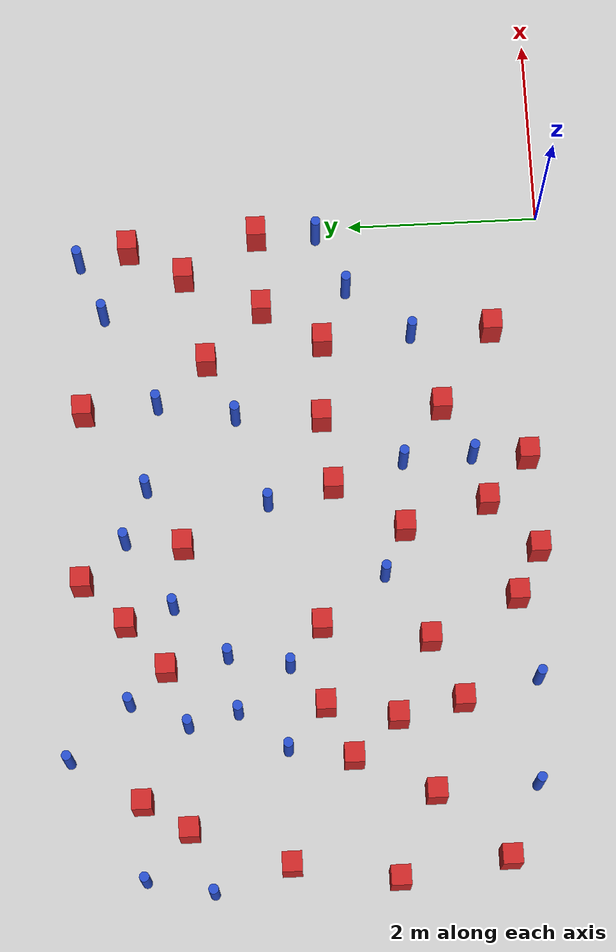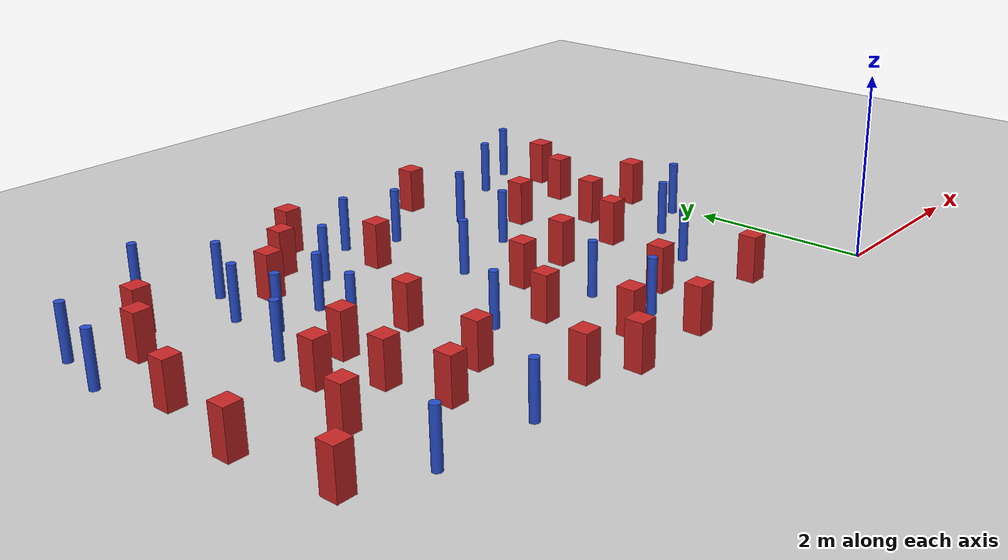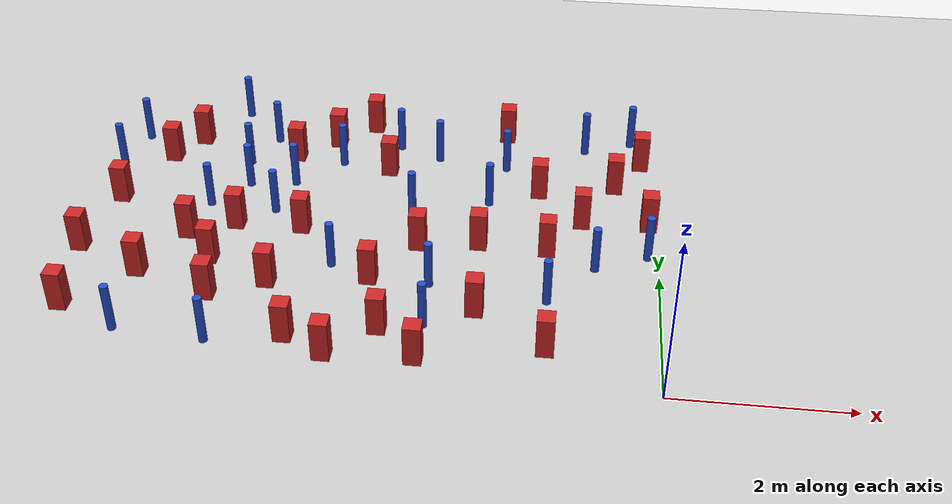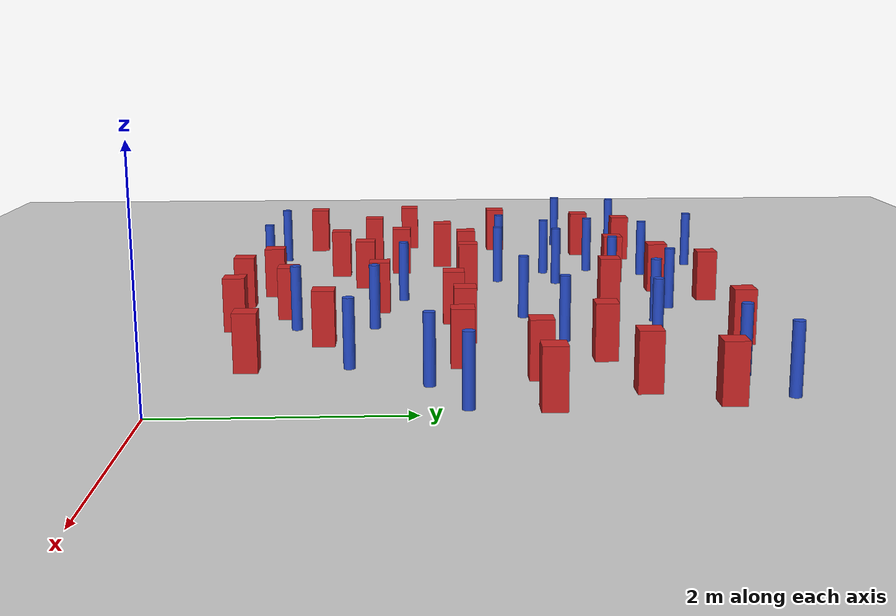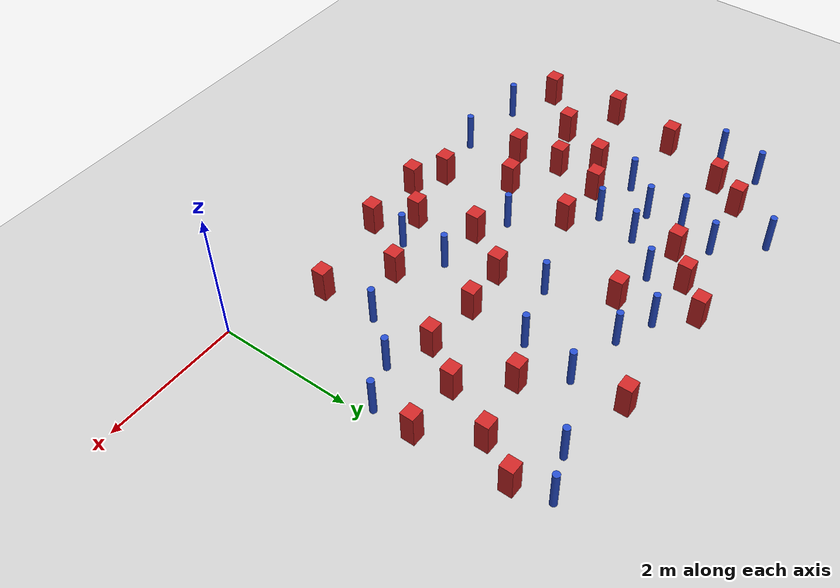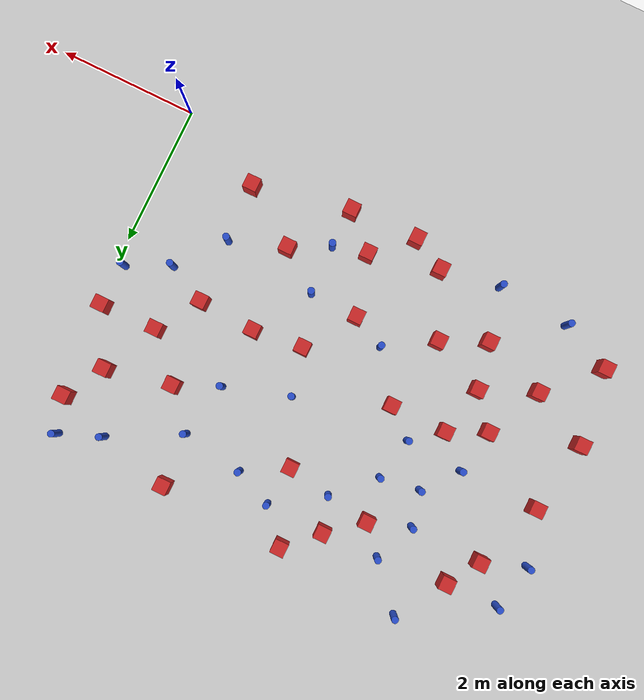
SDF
<sdf version="1.6">
 <world name="default">
  <model name="ground_plane">
   <static>1</static>
   <link name="link">
    <collision name="collision">
     <geometry><plane><normal>0 0 1</normal><size>100 100</size></plane></geometry>
     <surface><friction><ode><mu>100</mu><mu2>50</mu2></ode></friction></surface>
    </collision>
    <visual name="visual">
     <cast_shadows>0</cast_shadows>
     <geometry><plane><normal>0 0 1</normal><size>100 100</size></plane></geometry>
     <material>
      <ambient>1.0 1.0 1.0 1.0</ambient>
      <diffuse>0.8 0.8 0.8 1.0</diffuse>
      <specular>0.01 0.01 0.01 1.000000</specular>
     </material>
    </visual>
   </link>
  </model>
  <model name="square_post_obstacle1">
   <static>true</static>
   <pose>-2.65775517127 0.298628384528 1.91545236811e-07 -7.35059704564e-06 1.12565212e-07 2.39332434364e-05</pose>
   <link name="link">
    <pose>0 0 0.25 0 -0 0</pose>
    <inertial>
     <mass>100</mass>
     <inertia>
      <ixx>0.166667</ixx>
      <ixy>0</ixy>
      <ixz>0</ixz>
      <iyy>0.166667</iyy>
      <iyz>0</iyz>
      <izz>0.166667</izz>
     </inertia>
    </inertial>
    <collision name="collision"><geometry><box><size>.2 .2 .5</size></box></geometry></collision>
    <visual name="visual">
     <geometry><box><size>.2 .2 .5</size></box></geometry>
     <material>
      <script><name>Gazebo/Red</name><uri>file://media/materials/scripts/gazebo.material</uri></script>
     </material>
    </visual>
   </link>
  </model>
  <model name="square_post_obstacle15">
   <static>true</static>
   <pose>-0.932526725977 2.9677390461 1.91545236811e-07 -7.35059704564e-06 1.12565212e-07 2.39332434364e-05</pose>
   <link name="link">
    <pose>0 0 0.25 0 -0 0</pose>
    <inertial>
     <mass>100</mass>
     <inertia>
      <ixx>0.166667</ixx>
      <ixy>0</ixy>
      <ixz>0</ixz>
      <iyy>0.166667</iyy>
      <iyz>0</iyz>
      <izz>0.166667</izz>
     </inertia>
    </inertial>
    <collision name="collision"><geometry><box><size>.2 .2 .5</size></box></geometry></collision>
    <visual name="visual">
     <geometry><box><size>.2 .2 .5</size></box></geometry>
     <material>
      <script><name>Gazebo/Red</name><uri>file://media/materials/scripts/gazebo.material</uri></script>
     </material>
    </visual>
   </link>
  </model>
  <model name="square_post_obstacle19">
   <static>true</static>
   <pose>-6.7253337797 2.91687751709 1.91545236811e-07 -7.35059704564e-06 1.12565212e-07 2.39332434364e-05</pose>
   <link name="link">
    <pose>0 0 0.25 0 -0 0</pose>
    <inertial>
     <mass>100</mass>
     <inertia>
      <ixx>0.166667</ixx>
      <ixy>0</ixy>
      <ixz>0</ixz>
      <iyy>0.166667</iyy>
      <iyz>0</iyz>
      <izz>0.166667</izz>
     </inertia>
    </inertial>
    <collision name="collision"><geometry><box><size>.2 .2 .5</size></box></geometry></collision>
    <visual name="visual">
     <geometry><box><size>.2 .2 .5</size></box></geometry>
     <material>
      <script><name>Gazebo/Red</name><uri>file://media/materials/scripts/gazebo.material</uri></script>
     </material>
    </visual>
   </link>
  </model>
  <model name="pole_obstacle11">
   <static>true</static>
   <pose>-1.28398703065 1.41821444295 7.38925637345e-09 -8.471706928e-08 1.24976765079e-08 -1.74513093017e-07</pose>
   <link name="link">
    <pose>0 0 0.3 0 -0 0</pose>
    <inertial>
     <mass>1</mass>
     <inertia><ixx>0.145833</ixx><ixy>0</ixy><ixz>0</ixz><iyy>0.145833</iyy><iyz>0</iyz><izz>0.125</izz></inertia>
    </inertial>
    <collision name="collision">
     <geometry><cylinder><radius>0.05</radius><length>.6</length></cylinder></geometry>
    </collision>
    <visual name="visual">
     <geometry><cylinder><radius>0.05</radius><length>.6</length></cylinder></geometry>
     <material>
      <script><name>Gazebo/Blue</name><uri>file://media/materials/scripts/gazebo.material</uri></script>
     </material>
    </visual>
   </link>
  </model>
  <model name="square_post_obstacle21">
   <static>true</static>
   <pose>-2.15206947412 2.39921926246 1.91545236811e-07 -7.35059704564e-06 1.12565212e-07 2.39332434364e-05</pose>
   <link name="link">
    <pose>0 0 0.25 0 -0 0</pose>
    <inertial>
     <mass>100</mass>
     <inertia>
      <ixx>0.166667</ixx>
      <ixy>0</ixy>
      <ixz>0</ixz>
      <iyy>0.166667</iyy>
      <iyz>0</iyz>
      <izz>0.166667</izz>
     </inertia>
    </inertial>
    <collision name="collision"><geometry><box><size>.2 .2 .5</size></box></geometry></collision>
    <visual name="visual">
     <geometry><box><size>.2 .2 .5</size></box></geometry>
     <material>
      <script><name>Gazebo/Red</name><uri>file://media/materials/scripts/gazebo.material</uri></script>
     </material>
    </visual>
   </link>
  </model>
  <model name="square_post_obstacle26">
   <static>true</static>
   <pose>-5.68889429534 2.25094203357 1.91545236811e-07 -7.35059704564e-06 1.12565212e-07 2.39332434364e-05</pose>
   <link name="link">
    <pose>0 0 0.25 0 -0 0</pose>
    <inertial>
     <mass>100</mass>
     <inertia>
      <ixx>0.166667</ixx>
      <ixy>0</ixy>
      <ixz>0</ixz>
      <iyy>0.166667</iyy>
      <iyz>0</iyz>
      <izz>0.166667</izz>
     </inertia>
    </inertial>
    <collision name="collision"><geometry><box><size>.2 .2 .5</size></box></geometry></collision>
    <visual name="visual">
     <geometry><box><size>.2 .2 .5</size></box></geometry>
     <material>
      <script><name>Gazebo/Red</name><uri>file://media/materials/scripts/gazebo.material</uri></script>
     </material>
    </visual>
   </link>
  </model>
  <model name="square_post_obstacle27">
   <static>true</static>
   <pose>-4.52512040629 1.41693718209 1.91545236811e-07 -7.35059704564e-06 1.12565212e-07 2.39332434364e-05</pose>
   <link name="link">
    <pose>0 0 0.25 0 -0 0</pose>
    <inertial>
     <mass>100</mass>
     <inertia>
      <ixx>0.166667</ixx>
      <ixy>0</ixy>
      <ixz>0</ixz>
      <iyy>0.166667</iyy>
      <iyz>0</iyz>
      <izz>0.166667</izz>
     </inertia>
    </inertial>
    <collision name="collision"><geometry><box><size>.2 .2 .5</size></box></geometry></collision>
    <visual name="visual">
     <geometry><box><size>.2 .2 .5</size></box></geometry>
     <material>
      <script><name>Gazebo/Red</name><uri>file://media/materials/scripts/gazebo.material</uri></script>
     </material>
    </visual>
   </link>
  </model>
  <model name="pole_obstacle19">
   <static>true</static>
   <pose>-5.579536095 2.89933511784 7.38925637345e-09 -8.47170692798e-08 1.24976764937e-08 -1.74513093023e-07</pose>
   <link name="link">
    <pose>0 0 0.3 0 -0 0</pose>
    <inertial>
     <mass>1</mass>
     <inertia><ixx>0.145833</ixx><ixy>0</ixy><ixz>0</ixz><iyy>0.145833</iyy><iyz>0</iyz><izz>0.125</izz></inertia>
    </inertial>
    <collision name="collision">
     <geometry><cylinder><radius>0.05</radius><length>.6</length></cylinder></geometry>
    </collision>
    <visual name="visual">
     <geometry><cylinder><radius>0.05</radius><length>.6</length></cylinder></geometry>
     <material>
      <script><name>Gazebo/Blue</name><uri>file://media/materials/scripts/gazebo.material</uri></script>
     </material>
    </visual>
   </link>
  </model>
  <model name="pole_obstacle20">
   <static>true</static>
   <pose>-2.62995323017 0.861603327612 7.38925637345e-09 -8.471706928e-08 1.24976765177e-08 -1.74513093012e-07</pose>
   <link name="link">
    <pose>0 0 0.3 0 -0 0</pose>
    <inertial>
     <mass>1</mass>
     <inertia><ixx>0.145833</ixx><ixy>0</ixy><ixz>0</ixz><iyy>0.145833</iyy><iyz>0</iyz><izz>0.125</izz></inertia>
    </inertial>
    <collision name="collision">
     <geometry><cylinder><radius>0.05</radius><length>.6</length></cylinder></geometry>
    </collision>
    <visual name="visual">
     <geometry><cylinder><radius>0.05</radius><length>.6</length></cylinder></geometry>
     <material>
      <script><name>Gazebo/Blue</name><uri>file://media/materials/scripts/gazebo.material</uri></script>
     </material>
    </visual>
   </link>
  </model>
  <model name="pole_obstacle26">
   <static>true</static>
   <pose>-4.61319312309 3.46450681237 7.38925637345e-09 -8.47170692798e-08 1.24976764937e-08 -1.74513093023e-07</pose>
   <link name="link">
    <pose>0 0 0.3 0 -0 0</pose>
    <inertial>
     <mass>1</mass>
     <inertia><ixx>0.145833</ixx><ixy>0</ixy><ixz>0</ixz><iyy>0.145833</iyy><iyz>0</iyz><izz>0.125</izz></inertia>
    </inertial>
    <collision name="collision">
     <geometry><cylinder><radius>0.05</radius><length>.6</length></cylinder></geometry>
    </collision>
    <visual name="visual">
     <geometry><cylinder><radius>0.05</radius><length>.6</length></cylinder></geometry>
     <material>
      <script><name>Gazebo/Blue</name><uri>file://media/materials/scripts/gazebo.material</uri></script>
     </material>
    </visual>
   </link>
  </model>
  <model name="pole_obstacle27">
   <static>true</static>
   <pose>-4.97878877309 0.352060895739 7.38925637345e-09 -8.47170692798e-08 1.24976765003e-08 -1.7451309302e-07</pose>
   <link name="link">
    <pose>0 0 0.3 0 -0 0</pose>
    <inertial>
     <mass>1</mass>
     <inertia><ixx>0.145833</ixx><ixy>0</ixy><ixz>0</ixz><iyy>0.145833</iyy><iyz>0</iyz><izz>0.125</izz></inertia>
    </inertial>
    <collision name="collision">
     <geometry><cylinder><radius>0.05</radius><length>.6</length></cylinder></geometry>
    </collision>
    <visual name="visual">
     <geometry><cylinder><radius>0.05</radius><length>.6</length></cylinder></geometry>
     <material>
      <script><name>Gazebo/Blue</name><uri>file://media/materials/scripts/gazebo.material</uri></script>
     </material>
    </visual>
   </link>
  </model>
  <model name="square_post_obstacle39">
   <static>true</static>
   <pose>-0.206156304745 4.34060191611 1.91545236811e-07 -7.35059704564e-06 1.12565212e-07 2.39332434364e-05</pose>
   <link name="link">
    <pose>0 0 0.25 0 -0 0</pose>
    <inertial>
     <mass>100</mass>
     <inertia>
      <ixx>0.166667</ixx>
      <ixy>0</ixy>
      <ixz>0</ixz>
      <iyy>0.166667</iyy>
      <iyz>0</iyz>
      <izz>0.166667</izz>
     </inertia>
    </inertial>
    <collision name="collision"><geometry><box><size>.2 .2 .5</size></box></geometry></collision>
    <visual name="visual">
     <geometry><box><size>.2 .2 .5</size></box></geometry>
     <material>
      <script><name>Gazebo/Red</name><uri>file://media/materials/scripts/gazebo.material</uri></script>
     </material>
    </visual>
   </link>
  </model>
  <model name="square_post_obstacle43">
   <static>true</static>
   <pose>-1.32859761685 2.35233563959 1.91545236811e-07 -7.35059704564e-06 1.12565212e-07 2.39332434364e-05</pose>
   <link name="link">
    <pose>0 0 0.25 0 -0 0</pose>
    <inertial>
     <mass>100</mass>
     <inertia>
      <ixx>0.166667</ixx>
      <ixy>0</ixy>
      <ixz>0</ixz>
      <iyy>0.166667</iyy>
      <iyz>0</iyz>
      <izz>0.166667</izz>
     </inertia>
    </inertial>
    <collision name="collision"><geometry><box><size>.2 .2 .5</size></box></geometry></collision>
    <visual name="visual">
     <geometry><box><size>.2 .2 .5</size></box></geometry>
     <material>
      <script><name>Gazebo/Red</name><uri>file://media/materials/scripts/gazebo.material</uri></script>
     </material>
    </visual>
   </link>
  </model>
  <model name="square_post_obstacle45">
   <static>true</static>
   <pose>-4.33298371476 2.50244606348 1.91545236811e-07 -7.35059704564e-06 1.12565212e-07 2.39332434364e-05</pose>
   <link name="link">
    <pose>0 0 0.25 0 -0 0</pose>
    <inertial>
     <mass>100</mass>
     <inertia>
      <ixx>0.166667</ixx>
      <ixy>0</ixy>
      <ixz>0</ixz>
      <iyy>0.166667</iyy>
      <iyz>0</iyz>
      <izz>0.166667</izz>
     </inertia>
    </inertial>
    <collision name="collision"><geometry><box><size>.2 .2 .5</size></box></geometry></collision>
    <visual name="visual">
     <geometry><box><size>.2 .2 .5</size></box></geometry>
     <material>
      <script><name>Gazebo/Red</name><uri>file://media/materials/scripts/gazebo.material</uri></script>
     </material>
    </visual>
   </link>
  </model>
  <model name="square_post_obstacle48">
   <static>true</static>
   <pose>-3.44908081431 3.87513550211 1.91545236811e-07 -7.35059704564e-06 1.12565212e-07 2.39332434364e-05</pose>
   <link name="link">
    <pose>0 0 0.25 0 -0 0</pose>
    <inertial>
     <mass>100</mass>
     <inertia>
      <ixx>0.166667</ixx>
      <ixy>0</ixy>
      <ixz>0</ixz>
      <iyy>0.166667</iyy>
      <iyz>0</iyz>
      <izz>0.166667</izz>
     </inertia>
    </inertial>
    <collision name="collision"><geometry><box><size>.2 .2 .5</size></box></geometry></collision>
    <visual name="visual">
     <geometry><box><size>.2 .2 .5</size></box></geometry>
     <material>
      <script><name>Gazebo/Red</name><uri>file://media/materials/scripts/gazebo.material</uri></script>
     </material>
    </visual>
   </link>
  </model>
  <model name="pole_obstacle48">
   <static>true</static>
   <pose>-4.08024752037 3.99524183026 7.38925637345e-09 -8.47170692798e-08 1.2497676496e-08 -1.74513093023e-07</pose>
   <link name="link">
    <pose>0 0 0.3 0 -0 0</pose>
    <inertial>
     <mass>1</mass>
     <inertia><ixx>0.145833</ixx><ixy>0</ixy><ixz>0</ixz><iyy>0.145833</iyy><iyz>0</iyz><izz>0.125</izz></inertia>
    </inertial>
    <collision name="collision">
     <geometry><cylinder><radius>0.05</radius><length>.6</length></cylinder></geometry>
    </collision>
    <visual name="visual">
     <geometry><cylinder><radius>0.05</radius><length>.6</length></cylinder></geometry>
     <material>
      <script><name>Gazebo/Blue</name><uri>file://media/materials/scripts/gazebo.material</uri></script>
     </material>
    </visual>
   </link>
  </model>
  <model name="square_post_obstacle72">
   <static>true</static>
   <pose>-6.34181282021 3.9081560756 1.91545236811e-07 -7.35059704564e-06 1.12565212e-07 2.39332434364e-05</pose>
   <link name="link">
    <pose>0 0 0.25 0 -0 0</pose>
    <inertial>
     <mass>100</mass>
     <inertia>
      <ixx>0.166667</ixx>
      <ixy>0</ixy>
      <ixz>0</ixz>
      <iyy>0.166667</iyy>
      <iyz>0</iyz>
      <izz>0.166667</izz>
     </inertia>
    </inertial>
    <collision name="collision"><geometry><box><size>.2 .2 .5</size></box></geometry></collision>
    <visual name="visual">
     <geometry><box><size>.2 .2 .5</size></box></geometry>
     <material>
      <script><name>Gazebo/Red</name><uri>file://media/materials/scripts/gazebo.material</uri></script>
     </material>
    </visual>
   </link>
  </model>
  <model name="square_post_obstacle80">
   <static>true</static>
   <pose>-1.98028784016 4.8548676775 1.91545236811e-07 -7.35059704564e-06 1.12565212e-07 2.39332434364e-05</pose>
   <link name="link">
    <pose>0 0 0.25 0 -0 0</pose>
    <inertial>
     <mass>100</mass>
     <inertia>
      <ixx>0.166667</ixx>
      <ixy>0</ixy>
      <ixz>0</ixz>
      <iyy>0.166667</iyy>
      <iyz>0</iyz>
      <izz>0.166667</izz>
     </inertia>
    </inertial>
    <collision name="collision"><geometry><box><size>.2 .2 .5</size></box></geometry></collision>
    <visual name="visual">
     <geometry><box><size>.2 .2 .5</size></box></geometry>
     <material>
      <script><name>Gazebo/Red</name><uri>file://media/materials/scripts/gazebo.material</uri></script>
     </material>
    </visual>
   </link>
  </model>
  <model name="square_post_obstacle81">
   <static>true</static>
   <pose>-5.30283613992 1.78739595091 1.91545236811e-07 -7.35059704564e-06 1.12565212e-07 2.39332434364e-05</pose>
   <link name="link">
    <pose>0 0 0.25 0 -0 0</pose>
    <inertial>
     <mass>100</mass>
     <inertia>
      <ixx>0.166667</ixx>
      <ixy>0</ixy>
      <ixz>0</ixz>
      <iyy>0.166667</iyy>
      <iyz>0</iyz>
      <izz>0.166667</izz>
     </inertia>
    </inertial>
    <collision name="collision"><geometry><box><size>.2 .2 .5</size></box></geometry></collision>
    <visual name="visual">
     <geometry><box><size>.2 .2 .5</size></box></geometry>
     <material>
      <script><name>Gazebo/Red</name><uri>file://media/materials/scripts/gazebo.material</uri></script>
     </material>
    </visual>
   </link>
  </model>
  <model name="pole_obstacle100">
   <static>true</static>
   <pose>-0.752944164285 2.0743828327 7.38925637345e-09 -8.47170692799e-08 1.2497676509e-08 -1.74513093016e-07</pose>
   <link name="link">
    <pose>0 0 0.3 0 -0 0</pose>
    <inertial>
     <mass>1</mass>
     <inertia><ixx>0.145833</ixx><ixy>0</ixy><ixz>0</ixz><iyy>0.145833</iyy><iyz>0</iyz><izz>0.125</izz></inertia>
    </inertial>
    <collision name="collision">
     <geometry><cylinder><radius>0.05</radius><length>.6</length></cylinder></geometry>
    </collision>
    <visual name="visual">
     <geometry><cylinder><radius>0.05</radius><length>.6</length></cylinder></geometry>
     <material>
      <script><name>Gazebo/Blue</name><uri>file://media/materials/scripts/gazebo.material</uri></script>
     </material>
    </visual>
   </link>
  </model>
  <model name="square_post_obstacle93">
   <static>true</static>
   <pose>-1.26055206119 0.583687058568 1.91545236811e-07 -7.35059704564e-06 1.12565212e-07 2.39332434364e-05</pose>
   <link name="link">
    <pose>0 0 0.25 0 -0 0</pose>
    <inertial>
     <mass>100</mass>
     <inertia>
      <ixx>0.166667</ixx>
      <ixy>0</ixy>
      <ixz>0</ixz>
      <iyy>0.166667</iyy>
      <iyz>0</iyz>
      <izz>0.166667</izz>
     </inertia>
    </inertial>
    <collision name="collision"><geometry><box><size>.2 .2 .5</size></box></geometry></collision>
    <visual name="visual">
     <geometry><box><size>.2 .2 .5</size></box></geometry>
     <material>
      <script><name>Gazebo/Red</name><uri>file://media/materials/scripts/gazebo.material</uri></script>
     </material>
    </visual>
   </link>
  </model>
  <model name="square_post_obstacle98">
   <static>true</static>
   <pose>-1.48759657892 3.56467854902 1.91545236811e-07 -7.35059704564e-06 1.12565212e-07 2.39332434364e-05</pose>
   <link name="link">
    <pose>0 0 0.25 0 -0 0</pose>
    <inertial>
     <mass>100</mass>
     <inertia>
      <ixx>0.166667</ixx>
      <ixy>0</ixy>
      <ixz>0</ixz>
      <iyy>0.166667</iyy>
      <iyz>0</iyz>
      <izz>0.166667</izz>
     </inertia>
    </inertial>
    <collision name="collision"><geometry><box><size>.2 .2 .5</size></box></geometry></collision>
    <visual name="visual">
     <geometry><box><size>.2 .2 .5</size></box></geometry>
     <material>
      <script><name>Gazebo/Red</name><uri>file://media/materials/scripts/gazebo.material</uri></script>
     </material>
    </visual>
   </link>
  </model>
  <model name="pole_obstacle110">
   <static>true</static>
   <pose>-2.65346617348 1.58046530794 7.38925637345e-09 -8.471706928e-08 1.24976765152e-08 -1.74513093012e-07</pose>
   <link name="link">
    <pose>0 0 0.3 0 -0 0</pose>
    <inertial>
     <mass>1</mass>
     <inertia><ixx>0.145833</ixx><ixy>0</ixy><ixz>0</ixz><iyy>0.145833</iyy><iyz>0</iyz><izz>0.125</izz></inertia>
    </inertial>
    <collision name="collision">
     <geometry><cylinder><radius>0.05</radius><length>.6</length></cylinder></geometry>
    </collision>
    <visual name="visual">
     <geometry><cylinder><radius>0.05</radius><length>.6</length></cylinder></geometry>
     <material>
      <script><name>Gazebo/Blue</name><uri>file://media/materials/scripts/gazebo.material</uri></script>
     </material>
    </visual>
   </link>
  </model>
  <model name="pole_obstacle114">
   <static>true</static>
   <pose>-0.936533099131 4.62069045297 7.38925637345e-09 -8.471706928e-08 1.24976765086e-08 -1.74513093015e-07</pose>
   <link name="link">
    <pose>0 0 0.3 0 -0 0</pose>
    <inertial>
     <mass>1</mass>
     <inertia><ixx>0.145833</ixx><ixy>0</ixy><ixz>0</ixz><iyy>0.145833</iyy><iyz>0</iyz><izz>0.125</izz></inertia>
    </inertial>
    <collision name="collision">
     <geometry><cylinder><radius>0.05</radius><length>.6</length></cylinder></geometry>
    </collision>
    <visual name="visual">
     <geometry><cylinder><radius>0.05</radius><length>.6</length></cylinder></geometry>
     <material>
      <script><name>Gazebo/Blue</name><uri>file://media/materials/scripts/gazebo.material</uri></script>
     </material>
    </visual>
   </link>
  </model>
  <model name="pole_obstacle115">
   <static>true</static>
   <pose>-3.37843285961 4.46456266777 7.38925637345e-09 -8.47170692798e-08 1.24976765033e-08 -1.74513093019e-07</pose>
   <link name="link">
    <pose>0 0 0.3 0 -0 0</pose>
    <inertial>
     <mass>1</mass>
     <inertia><ixx>0.145833</ixx><ixy>0</ixy><ixz>0</ixz><iyy>0.145833</iyy><iyz>0</iyz><izz>0.125</izz></inertia>
    </inertial>
    <collision name="collision">
     <geometry><cylinder><radius>0.05</radius><length>.6</length></cylinder></geometry>
    </collision>
    <visual name="visual">
     <geometry><cylinder><radius>0.05</radius><length>.6</length></cylinder></geometry>
     <material>
      <script><name>Gazebo/Blue</name><uri>file://media/materials/scripts/gazebo.material</uri></script>
     </material>
    </visual>
   </link>
  </model>
  <model name="square_post_obstacle102">
   <static>true</static>
   <pose>-0.11619873784 2.98727127344 1.91545236811e-07 -7.35059704564e-06 1.12565212e-07 2.39332434364e-05</pose>
   <link name="link">
    <pose>0 0 0.25 0 -0 0</pose>
    <inertial>
     <mass>100</mass>
     <inertia>
      <ixx>0.166667</ixx>
      <ixy>0</ixy>
      <ixz>0</ixz>
      <iyy>0.166667</iyy>
      <iyz>0</iyz>
      <izz>0.166667</izz>
     </inertia>
    </inertial>
    <collision name="collision"><geometry><box><size>.2 .2 .5</size></box></geometry></collision>
    <visual name="visual">
     <geometry><box><size>.2 .2 .5</size></box></geometry>
     <material>
      <script><name>Gazebo/Red</name><uri>file://media/materials/scripts/gazebo.material</uri></script>
     </material>
    </visual>
   </link>
  </model>
  <model name="pole_obstacle117">
   <static>true</static>
   <pose>-1.94185974072 4.09061097211 7.38925637345e-09 -8.47170692799e-08 1.24976765033e-08 -1.74513093018e-07</pose>
   <link name="link">
    <pose>0 0 0.3 0 -0 0</pose>
    <inertial>
     <mass>1</mass>
     <inertia><ixx>0.145833</ixx><ixy>0</ixy><ixz>0</ixz><iyy>0.145833</iyy><iyz>0</iyz><izz>0.125</izz></inertia>
    </inertial>
    <collision name="collision">
     <geometry><cylinder><radius>0.05</radius><length>.6</length></cylinder></geometry>
    </collision>
    <visual name="visual">
     <geometry><cylinder><radius>0.05</radius><length>.6</length></cylinder></geometry>
     <material>
      <script><name>Gazebo/Blue</name><uri>file://media/materials/scripts/gazebo.material</uri></script>
     </material>
    </visual>
   </link>
  </model>
  <model name="pole_obstacle126">
   <static>true</static>
   <pose>-6.03803321083 0.435173703146 7.38925637345e-09 -8.47170692798e-08 1.24976765003e-08 -1.7451309302e-07</pose>
   <link name="link">
    <pose>0 0 0.3 0 -0 0</pose>
    <inertial>
     <mass>1</mass>
     <inertia><ixx>0.145833</ixx><ixy>0</ixy><ixz>0</ixz><iyy>0.145833</iyy><iyz>0</iyz><izz>0.125</izz></inertia>
    </inertial>
    <collision name="collision">
     <geometry><cylinder><radius>0.05</radius><length>.6</length></cylinder></geometry>
    </collision>
    <visual name="visual">
     <geometry><cylinder><radius>0.05</radius><length>.6</length></cylinder></geometry>
     <material>
      <script><name>Gazebo/Blue</name><uri>file://media/materials/scripts/gazebo.material</uri></script>
     </material>
    </visual>
   </link>
  </model>
  <model name="pole_obstacle130">
   <static>true</static>
   <pose>-3.03866449263 2.99013095021 7.38925637345e-09 -8.47170692798e-08 1.24976764939e-08 -1.74513093025e-07</pose>
   <link name="link">
    <pose>0 0 0.3 0 -0 0</pose>
    <inertial>
     <mass>1</mass>
     <inertia><ixx>0.145833</ixx><ixy>0</ixy><ixz>0</ixz><iyy>0.145833</iyy><iyz>0</iyz><izz>0.125</izz></inertia>
    </inertial>
    <collision name="collision">
     <geometry><cylinder><radius>0.05</radius><length>.6</length></cylinder></geometry>
    </collision>
    <visual name="visual">
     <geometry><cylinder><radius>0.05</radius><length>.6</length></cylinder></geometry>
     <material>
      <script><name>Gazebo/Blue</name><uri>file://media/materials/scripts/gazebo.material</uri></script>
     </material>
    </visual>
   </link>
  </model>
  <model name="pole_obstacle131">
   <static>true</static>
   <pose>-5.0536972484 4.46552538968 7.38925637345e-09 -8.47170692796e-08 1.24976764786e-08 -1.74513093032e-07</pose>
   <link name="link">
    <pose>0 0 0.3 0 -0 0</pose>
    <inertial>
     <mass>1</mass>
     <inertia><ixx>0.145833</ixx><ixy>0</ixy><ixz>0</ixz><iyy>0.145833</iyy><iyz>0</iyz><izz>0.125</izz></inertia>
    </inertial>
    <collision name="collision">
     <geometry><cylinder><radius>0.05</radius><length>.6</length></cylinder></geometry>
    </collision>
    <visual name="visual">
     <geometry><cylinder><radius>0.05</radius><length>.6</length></cylinder></geometry>
     <material>
      <script><name>Gazebo/Blue</name><uri>file://media/materials/scripts/gazebo.material</uri></script>
     </material>
    </visual>
   </link>
  </model>
  <model name="pole_obstacle134">
   <static>true</static>
   <pose>-6.81673916375 4.35164869751 7.38925637345e-09 -8.47170692796e-08 1.24976764786e-08 -1.74513093032e-07</pose>
   <link name="link">
    <pose>0 0 0.3 0 -0 0</pose>
    <inertial>
     <mass>1</mass>
     <inertia><ixx>0.145833</ixx><ixy>0</ixy><ixz>0</ixz><iyy>0.145833</iyy><iyz>0</iyz><izz>0.125</izz></inertia>
    </inertial>
    <collision name="collision">
     <geometry><cylinder><radius>0.05</radius><length>.6</length></cylinder></geometry>
    </collision>
    <visual name="visual">
     <geometry><cylinder><radius>0.05</radius><length>.6</length></cylinder></geometry>
     <material>
      <script><name>Gazebo/Blue</name><uri>file://media/materials/scripts/gazebo.material</uri></script>
     </material>
    </visual>
   </link>
  </model>
  <model name="square_post_obstacle121">
   <static>true</static>
   <pose>-3.12209382743 0.743686402822 1.91545236811e-07 -7.35059704564e-06 1.12565212e-07 2.39332434364e-05</pose>
   <link name="link">
    <pose>0 0 0.25 0 -0 0</pose>
    <inertial>
     <mass>100</mass>
     <inertia>
      <ixx>0.166667</ixx>
      <ixy>0</ixy>
      <ixz>0</ixz>
      <iyy>0.166667</iyy>
      <iyz>0</iyz>
      <izz>0.166667</izz>
     </inertia>
    </inertial>
    <collision name="collision"><geometry><box><size>.2 .2 .5</size></box></geometry></collision>
    <visual name="visual">
     <geometry><box><size>.2 .2 .5</size></box></geometry>
     <material>
      <script><name>Gazebo/Red</name><uri>file://media/materials/scripts/gazebo.material</uri></script>
     </material>
    </visual>
   </link>
  </model>
  <model name="pole_obstacle140">
   <static>true</static>
   <pose>-5.18722870395 3.38224092259 7.38925637345e-09 -8.47170692798e-08 1.24976764937e-08 -1.74513093023e-07</pose>
   <link name="link">
    <pose>0 0 0.3 0 -0 0</pose>
    <inertial>
     <mass>1</mass>
     <inertia><ixx>0.145833</ixx><ixy>0</ixy><ixz>0</ixz><iyy>0.145833</iyy><iyz>0</iyz><izz>0.125</izz></inertia>
    </inertial>
    <collision name="collision">
     <geometry><cylinder><radius>0.05</radius><length>.6</length></cylinder></geometry>
    </collision>
    <visual name="visual">
     <geometry><cylinder><radius>0.05</radius><length>.6</length></cylinder></geometry>
     <material>
      <script><name>Gazebo/Blue</name><uri>file://media/materials/scripts/gazebo.material</uri></script>
     </material>
    </visual>
   </link>
  </model>
  <model name="square_post_obstacle128">
   <static>true</static>
   <pose>-4.12402213062 0.507467841183 1.91545236811e-07 -7.35059704564e-06 1.12565212e-07 2.39332434364e-05</pose>
   <link name="link">
    <pose>0 0 0.25 0 -0 0</pose>
    <inertial>
     <mass>100</mass>
     <inertia>
      <ixx>0.166667</ixx>
      <ixy>0</ixy>
      <ixz>0</ixz>
      <iyy>0.166667</iyy>
      <iyz>0</iyz>
      <izz>0.166667</izz>
     </inertia>
    </inertial>
    <collision name="collision"><geometry><box><size>.2 .2 .5</size></box></geometry></collision>
    <visual name="visual">
     <geometry><box><size>.2 .2 .5</size></box></geometry>
     <material>
      <script><name>Gazebo/Red</name><uri>file://media/materials/scripts/gazebo.material</uri></script>
     </material>
    </visual>
   </link>
  </model>
  <model name="square_post_obstacle131">
   <static>true</static>
   <pose>-5.16371350006 1.12397603975 1.91545236811e-07 -7.35059704564e-06 1.12565212e-07 2.39332434364e-05</pose>
   <link name="link">
    <pose>0 0 0.25 0 -0 0</pose>
    <inertial>
     <mass>100</mass>
     <inertia>
      <ixx>0.166667</ixx>
      <ixy>0</ixy>
      <ixz>0</ixz>
      <iyy>0.166667</iyy>
      <iyz>0</iyz>
      <izz>0.166667</izz>
     </inertia>
    </inertial>
    <collision name="collision"><geometry><box><size>.2 .2 .5</size></box></geometry></collision>
    <visual name="visual">
     <geometry><box><size>.2 .2 .5</size></box></geometry>
     <material>
      <script><name>Gazebo/Red</name><uri>file://media/materials/scripts/gazebo.material</uri></script>
     </material>
    </visual>
   </link>
  </model>
  <model name="square_post_obstacle140">
   <static>true</static>
   <pose>-6.75377627861 0.766947448625 1.91545236811e-07 -7.35059704564e-06 1.12565212e-07 2.39332434364e-05</pose>
   <link name="link">
    <pose>0 0 0.25 0 -0 0</pose>
    <inertial>
     <mass>100</mass>
     <inertia>
      <ixx>0.166667</ixx>
      <ixy>0</ixy>
      <ixz>0</ixz>
      <iyy>0.166667</iyy>
      <iyz>0</iyz>
      <izz>0.166667</izz>
     </inertia>
    </inertial>
    <collision name="collision"><geometry><box><size>.2 .2 .5</size></box></geometry></collision>
    <visual name="visual">
     <geometry><box><size>.2 .2 .5</size></box></geometry>
     <material>
      <script><name>Gazebo/Red</name><uri>file://media/materials/scripts/gazebo.material</uri></script>
     </material>
    </visual>
   </link>
  </model>
  <model name="pole_obstacle149">
   <static>true</static>
   <pose>-2.83359607927 4.23146366188 7.38925637345e-09 -8.47170692798e-08 1.24976765033e-08 -1.74513093019e-07</pose>
   <link name="link">
    <pose>0 0 0.3 0 -0 0</pose>
    <inertial>
     <mass>1</mass>
     <inertia><ixx>0.145833</ixx><ixy>0</ixy><ixz>0</ixz><iyy>0.145833</iyy><iyz>0</iyz><izz>0.125</izz></inertia>
    </inertial>
    <collision name="collision">
     <geometry><cylinder><radius>0.05</radius><length>.6</length></cylinder></geometry>
    </collision>
    <visual name="visual">
     <geometry><cylinder><radius>0.05</radius><length>.6</length></cylinder></geometry>
     <material>
      <script><name>Gazebo/Blue</name><uri>file://media/materials/scripts/gazebo.material</uri></script>
     </material>
    </visual>
   </link>
  </model>
  <model name="square_post_obstacle142">
   <static>true</static>
   <pose>-2.87640322369 2.31378897637 1.91545236811e-07 -7.35059704564e-06 1.12565212e-07 2.39332434364e-05</pose>
   <link name="link">
    <pose>0 0 0.25 0 -0 0</pose>
    <inertial>
     <mass>100</mass>
     <inertia>
      <ixx>0.166667</ixx>
      <ixy>0</ixy>
      <ixz>0</ixz>
      <iyy>0.166667</iyy>
      <iyz>0</iyz>
      <izz>0.166667</izz>
     </inertia>
    </inertial>
    <collision name="collision"><geometry><box><size>.2 .2 .5</size></box></geometry></collision>
    <visual name="visual">
     <geometry><box><size>.2 .2 .5</size></box></geometry>
     <material>
      <script><name>Gazebo/Red</name><uri>file://media/materials/scripts/gazebo.material</uri></script>
     </material>
    </visual>
   </link>
  </model>
  <model name="pole_obstacle159">
   <static>true</static>
   <pose>-3.84108786457 1.83274947636 7.38925637345e-09 -8.471706928e-08 1.24976765152e-08 -1.74513093012e-07</pose>
   <link name="link">
    <pose>0 0 0.3 0 -0 0</pose>
    <inertial>
     <mass>1</mass>
     <inertia><ixx>0.145833</ixx><ixy>0</ixy><ixz>0</ixz><iyy>0.145833</iyy><iyz>0</iyz><izz>0.125</izz></inertia>
    </inertial>
    <collision name="collision">
     <geometry><cylinder><radius>0.05</radius><length>.6</length></cylinder></geometry>
    </collision>
    <visual name="visual">
     <geometry><cylinder><radius>0.05</radius><length>.6</length></cylinder></geometry>
     <material>
      <script><name>Gazebo/Blue</name><uri>file://media/materials/scripts/gazebo.material</uri></script>
     </material>
    </visual>
   </link>
  </model>
  <model name="pole_obstacle160">
   <static>true</static>
   <pose>-0.33602130822 4.8608603432 7.38925637345e-09 -8.471706928e-08 1.24976765079e-08 -1.74513093015e-07</pose>
   <link name="link">
    <pose>0 0 0.3 0 -0 0</pose>
    <inertial>
     <mass>1</mass>
     <inertia><ixx>0.145833</ixx><ixy>0</ixy><ixz>0</ixz><iyy>0.145833</iyy><iyz>0</iyz><izz>0.125</izz></inertia>
    </inertial>
    <collision name="collision">
     <geometry><cylinder><radius>0.05</radius><length>.6</length></cylinder></geometry>
    </collision>
    <visual name="visual">
     <geometry><cylinder><radius>0.05</radius><length>.6</length></cylinder></geometry>
     <material>
      <script><name>Gazebo/Blue</name><uri>file://media/materials/scripts/gazebo.material</uri></script>
     </material>
    </visual>
   </link>
  </model>
  <model name="square_post_obstacle154">
   <static>true</static>
   <pose>-6.90632873622 1.86397521827 1.91545236811e-07 -7.35059704564e-06 1.12565212e-07 2.39332434364e-05</pose>
   <link name="link">
    <pose>0 0 0.25 0 -0 0</pose>
    <inertial>
     <mass>100</mass>
     <inertia>
      <ixx>0.166667</ixx>
      <ixy>0</ixy>
      <ixz>0</ixz>
      <iyy>0.166667</iyy>
      <iyz>0</iyz>
      <izz>0.166667</izz>
     </inertia>
    </inertial>
    <collision name="collision"><geometry><box><size>.2 .2 .5</size></box></geometry></collision>
    <visual name="visual">
     <geometry><box><size>.2 .2 .5</size></box></geometry>
     <material>
      <script><name>Gazebo/Red</name><uri>file://media/materials/scripts/gazebo.material</uri></script>
     </material>
    </visual>
   </link>
  </model>
  <model name="square_post_obstacle158">
   <static>true</static>
   <pose>-4.23007633912 4.48324444546 1.91545236811e-07 -7.35059704564e-06 1.12565212e-07 2.39332434364e-05</pose>
   <link name="link">
    <pose>0 0 0.25 0 -0 0</pose>
    <inertial>
     <mass>100</mass>
     <inertia>
      <ixx>0.166667</ixx>
      <ixy>0</ixy>
      <ixz>0</ixz>
      <iyy>0.166667</iyy>
      <iyz>0</iyz>
      <izz>0.166667</izz>
     </inertia>
    </inertial>
    <collision name="collision"><geometry><box><size>.2 .2 .5</size></box></geometry></collision>
    <visual name="visual">
     <geometry><box><size>.2 .2 .5</size></box></geometry>
     <material>
      <script><name>Gazebo/Red</name><uri>file://media/materials/scripts/gazebo.material</uri></script>
     </material>
    </visual>
   </link>
  </model>
  <model name="square_post_obstacle161">
   <static>true</static>
   <pose>-3.36118085982 1.60514995416 1.91545236811e-07 -7.35059704564e-06 1.12565212e-07 2.39332434364e-05</pose>
   <link name="link">
    <pose>0 0 0.25 0 -0 0</pose>
    <inertial>
     <mass>100</mass>
     <inertia>
      <ixx>0.166667</ixx>
      <ixy>0</ixy>
      <ixz>0</ixz>
      <iyy>0.166667</iyy>
      <iyz>0</iyz>
      <izz>0.166667</izz>
     </inertia>
    </inertial>
    <collision name="collision"><geometry><box><size>.2 .2 .5</size></box></geometry></collision>
    <visual name="visual">
     <geometry><box><size>.2 .2 .5</size></box></geometry>
     <material>
      <script><name>Gazebo/Red</name><uri>file://media/materials/scripts/gazebo.material</uri></script>
     </material>
    </visual>
   </link>
  </model>
  <model name="square_post_obstacle169">
   <static>true</static>
   <pose>-0.540113599619 3.76810515619 1.91545236811e-07 -7.35059704564e-06 1.12565212e-07 2.39332434364e-05</pose>
   <link name="link">
    <pose>0 0 0.25 0 -0 0</pose>
    <inertial>
     <mass>100</mass>
     <inertia>
      <ixx>0.166667</ixx>
      <ixy>0</ixy>
      <ixz>0</ixz>
      <iyy>0.166667</iyy>
      <iyz>0</iyz>
      <izz>0.166667</izz>
     </inertia>
    </inertial>
    <collision name="collision"><geometry><box><size>.2 .2 .5</size></box></geometry></collision>
    <visual name="visual">
     <geometry><box><size>.2 .2 .5</size></box></geometry>
     <material>
      <script><name>Gazebo/Red</name><uri>file://media/materials/scripts/gazebo.material</uri></script>
     </material>
    </visual>
   </link>
  </model>
  <model name="square_post_obstacle172">
   <static>true</static>
   <pose>-6.07600801491 1.4566826881 1.91545236811e-07 -7.35059704564e-06 1.12565212e-07 2.39332434364e-05</pose>
   <link name="link">
    <pose>0 0 0.25 0 -0 0</pose>
    <inertial>
     <mass>100</mass>
     <inertia>
      <ixx>0.166667</ixx>
      <ixy>0</ixy>
      <ixz>0</ixz>
      <iyy>0.166667</iyy>
      <iyz>0</iyz>
      <izz>0.166667</izz>
     </inertia>
    </inertial>
    <collision name="collision"><geometry><box><size>.2 .2 .5</size></box></geometry></collision>
    <visual name="visual">
     <geometry><box><size>.2 .2 .5</size></box></geometry>
     <material>
      <script><name>Gazebo/Red</name><uri>file://media/materials/scripts/gazebo.material</uri></script>
     </material>
    </visual>
   </link>
  </model>
  <model name="square_post_obstacle177">
   <static>true</static>
   <pose>-3.78823559316 4.91176148362 1.91545236811e-07 -7.35059704564e-06 1.12565212e-07 2.39332434364e-05</pose>
   <link name="link">
    <pose>0 0 0.25 0 -0 0</pose>
    <inertial>
     <mass>100</mass>
     <inertia>
      <ixx>0.166667</ixx>
      <ixy>0</ixy>
      <ixz>0</ixz>
      <iyy>0.166667</iyy>
      <iyz>0</iyz>
      <izz>0.166667</izz>
     </inertia>
    </inertial>
    <collision name="collision"><geometry><box><size>.2 .2 .5</size></box></geometry></collision>
    <visual name="visual">
     <geometry><box><size>.2 .2 .5</size></box></geometry>
     <material>
      <script><name>Gazebo/Red</name><uri>file://media/materials/scripts/gazebo.material</uri></script>
     </material>
    </visual>
   </link>
  </model>
  <model name="square_post_obstacle178">
   <static>true</static>
   <pose>-4.71230159979 4.08715423463 1.91545236811e-07 -7.35059704564e-06 1.12565212e-07 2.39332434364e-05</pose>
   <link name="link">
    <pose>0 0 0.25 0 -0 0</pose>
    <inertial>
     <mass>100</mass>
     <inertia>
      <ixx>0.166667</ixx>
      <ixy>0</ixy>
      <ixz>0</ixz>
      <iyy>0.166667</iyy>
      <iyz>0</iyz>
      <izz>0.166667</izz>
     </inertia>
    </inertial>
    <collision name="collision"><geometry><box><size>.2 .2 .5</size></box></geometry></collision>
    <visual name="visual">
     <geometry><box><size>.2 .2 .5</size></box></geometry>
     <material>
      <script><name>Gazebo/Red</name><uri>file://media/materials/scripts/gazebo.material</uri></script>
     </material>
    </visual>
   </link>
  </model>
  <model name="square_post_obstacle187">
   <static>true</static>
   <pose>-6.04994693631 4.36277752138 1.91545236811e-07 -7.35059704564e-06 1.12565212e-07 2.39332434364e-05</pose>
   <link name="link">
    <pose>0 0 0.25 0 -0 0</pose>
    <inertial>
     <mass>100</mass>
     <inertia>
      <ixx>0.166667</ixx>
      <ixy>0</ixy>
      <ixz>0</ixz>
      <iyy>0.166667</iyy>
      <iyz>0</iyz>
      <izz>0.166667</izz>
     </inertia>
    </inertial>
    <collision name="collision"><geometry><box><size>.2 .2 .5</size></box></geometry></collision>
    <visual name="visual">
     <geometry><box><size>.2 .2 .5</size></box></geometry>
     <material>
      <script><name>Gazebo/Red</name><uri>file://media/materials/scripts/gazebo.material</uri></script>
     </material>
    </visual>
   </link>
  </model>
  <model name="square_post_obstacle194">
   <static>true</static>
   <pose>-2.08184944761 1.15358083283 1.91545236811e-07 -7.35059704564e-06 1.12565212e-07 2.39332434364e-05</pose>
   <link name="link">
    <pose>0 0 0.25 0 -0 0</pose>
    <inertial>
     <mass>100</mass>
     <inertia>
      <ixx>0.166667</ixx>
      <ixy>0</ixy>
      <ixz>0</ixz>
      <iyy>0.166667</iyy>
      <iyz>0</iyz>
      <izz>0.166667</izz>
     </inertia>
    </inertial>
    <collision name="collision"><geometry><box><size>.2 .2 .5</size></box></geometry></collision>
    <visual name="visual">
     <geometry><box><size>.2 .2 .5</size></box></geometry>
     <material>
      <script><name>Gazebo/Red</name><uri>file://media/materials/scripts/gazebo.material</uri></script>
     </material>
    </visual>
   </link>
  </model>
  <model name="square_post_obstacle197">
   <static>true</static>
   <pose>-5.14769253891 2.50514394512 1.91545236811e-07 -7.35059704564e-06 1.12565212e-07 2.39332434364e-05</pose>
   <link name="link">
    <pose>0 0 0.25 0 -0 0</pose>
    <inertial>
     <mass>100</mass>
     <inertia>
      <ixx>0.166667</ixx>
      <ixy>0</ixy>
      <ixz>0</ixz>
      <iyy>0.166667</iyy>
      <iyz>0</iyz>
      <izz>0.166667</izz>
     </inertia>
    </inertial>
    <collision name="collision"><geometry><box><size>.2 .2 .5</size></box></geometry></collision>
    <visual name="visual">
     <geometry><box><size>.2 .2 .5</size></box></geometry>
     <material>
      <script><name>Gazebo/Red</name><uri>file://media/materials/scripts/gazebo.material</uri></script>
     </material>
    </visual>
   </link>
  </model>
  <model name="pole_obstacle191">
   <static>true</static>
   <pose>-5.6017312454 5.07886529694 7.38925637345e-09 -8.47170692796e-08 1.24976764786e-08 -1.74513093032e-07</pose>
   <link name="link">
    <pose>0 0 0.3 0 -0 0</pose>
    <inertial>
     <mass>1</mass>
     <inertia><ixx>0.145833</ixx><ixy>0</ixy><ixz>0</ixz><iyy>0.145833</iyy><iyz>0</iyz><izz>0.125</izz></inertia>
    </inertial>
    <collision name="collision">
     <geometry><cylinder><radius>0.05</radius><length>.6</length></cylinder></geometry>
    </collision>
    <visual name="visual">
     <geometry><cylinder><radius>0.05</radius><length>.6</length></cylinder></geometry>
     <material>
      <script><name>Gazebo/Blue</name><uri>file://media/materials/scripts/gazebo.material</uri></script>
     </material>
    </visual>
   </link>
  </model>
  <model name="pole_obstacle193">
   <static>true</static>
   <pose>-2.1012939196 3.28751474987 7.38925637345e-09 -8.47170692798e-08 1.24976764939e-08 -1.74513093025e-07</pose>
   <link name="link">
    <pose>0 0 0.3 0 -0 0</pose>
    <inertial>
     <mass>1</mass>
     <inertia><ixx>0.145833</ixx><ixy>0</ixy><ixz>0</ixz><iyy>0.145833</iyy><iyz>0</iyz><izz>0.125</izz></inertia>
    </inertial>
    <collision name="collision">
     <geometry><cylinder><radius>0.05</radius><length>.6</length></cylinder></geometry>
    </collision>
    <visual name="visual">
     <geometry><cylinder><radius>0.05</radius><length>.6</length></cylinder></geometry>
     <material>
      <script><name>Gazebo/Blue</name><uri>file://media/materials/scripts/gazebo.material</uri></script>
     </material>
    </visual>
   </link>
  </model>
  <model name="pole_obstacle196">
   <static>true</static>
   <pose>-6.96530341036 3.6862183275 7.38925637345e-09 -8.47170692798e-08 1.24976764937e-08 -1.74513093023e-07</pose>
   <link name="link">
    <pose>0 0 0.3 0 -0 0</pose>
    <inertial>
     <mass>1</mass>
     <inertia><ixx>0.145833</ixx><ixy>0</ixy><ixz>0</ixz><iyy>0.145833</iyy><iyz>0</iyz><izz>0.125</izz></inertia>
    </inertial>
    <collision name="collision">
     <geometry><cylinder><radius>0.05</radius><length>.6</length></cylinder></geometry>
    </collision>
    <visual name="visual">
     <geometry><cylinder><radius>0.05</radius><length>.6</length></cylinder></geometry>
     <material>
      <script><name>Gazebo/Blue</name><uri>file://media/materials/scripts/gazebo.material</uri></script>
     </material>
    </visual>
   </link>
  </model>
  <model name="square_post_obstacle207">
   <static>true</static>
   <pose>-3.64485726201 0.259708462753 1.91545236811e-07 -7.35059704564e-06 1.12565212e-07 2.39332434364e-05</pose>
   <link name="link">
    <pose>0 0 0.25 0 -0 0</pose>
    <inertial>
     <mass>100</mass>
     <inertia>
      <ixx>0.166667</ixx>
      <ixy>0</ixy>
      <ixz>0</ixz>
      <iyy>0.166667</iyy>
      <iyz>0</iyz>
      <izz>0.166667</izz>
     </inertia>
    </inertial>
    <collision name="collision"><geometry><box><size>.2 .2 .5</size></box></geometry></collision>
    <visual name="visual">
     <geometry><box><size>.2 .2 .5</size></box></geometry>
     <material>
      <script><name>Gazebo/Red</name><uri>file://media/materials/scripts/gazebo.material</uri></script>
     </material>
    </visual>
   </link>
  </model>
  <model name="pole_obstacle205">
   <static>true</static>
   <pose>-4.73937999043 2.84117002078 7.38925637345e-09 -8.47170692798e-08 1.24976764937e-08 -1.74513093023e-07</pose>
   <link name="link">
    <pose>0 0 0.3 0 -0 0</pose>
    <inertial>
     <mass>1</mass>
     <inertia><ixx>0.145833</ixx><ixy>0</ixy><ixz>0</ixz><iyy>0.145833</iyy><iyz>0</iyz><izz>0.125</izz></inertia>
    </inertial>
    <collision name="collision">
     <geometry><cylinder><radius>0.05</radius><length>.6</length></cylinder></geometry>
    </collision>
    <visual name="visual">
     <geometry><cylinder><radius>0.05</radius><length>.6</length></cylinder></geometry>
     <material>
      <script><name>Gazebo/Blue</name><uri>file://media/materials/scripts/gazebo.material</uri></script>
     </material>
    </visual>
   </link>
  </model>
  <model name="pole_obstacle218">
   <static>true</static>
   <pose>-5.30334999043 3.88580002078 7.38925637345e-09 -8.47170692799e-08 1.24976765028e-08 -1.74513093019e-07</pose>
   <link name="link">
    <pose>0 0 0.3 0 -0 0</pose>
    <inertial>
     <mass>1</mass>
     <inertia><ixx>0.145833</ixx><ixy>0</ixy><ixz>0</ixz><iyy>0.145833</iyy><iyz>0</iyz><izz>0.125</izz></inertia>
    </inertial>
    <collision name="collision">
     <geometry><cylinder><radius>0.05</radius><length>.6</length></cylinder></geometry>
    </collision>
    <visual name="visual">
     <geometry><cylinder><radius>0.05</radius><length>.6</length></cylinder></geometry>
     <material>
      <script><name>Gazebo/Blue</name><uri>file://media/materials/scripts/gazebo.material</uri></script>
     </material>
    </visual>
   </link>
  </model>
  <model name="pole_obstacle221">
   <static>true</static>
   <pose>-0.134139990425 2.36022002078 7.38925637345e-09 -8.47170692792e-08 1.24976764361e-08 -1.74513093043e-07</pose>
   <link name="link">
    <pose>0 0 0.3 0 -0 0</pose>
    <inertial>
     <mass>1</mass>
     <inertia><ixx>0.145833</ixx><ixy>0</ixy><ixz>0</ixz><iyy>0.145833</iyy><iyz>0</iyz><izz>0.125</izz></inertia>
    </inertial>
    <collision name="collision">
     <geometry><cylinder><radius>0.05</radius><length>.6</length></cylinder></geometry>
    </collision>
    <visual name="visual">
     <geometry><cylinder><radius>0.05</radius><length>.6</length></cylinder></geometry>
     <material>
      <script><name>Gazebo/Blue</name><uri>file://media/materials/scripts/gazebo.material</uri></script>
     </material>
    </visual>
   </link>
  </model>
 </world>
</sdf>
